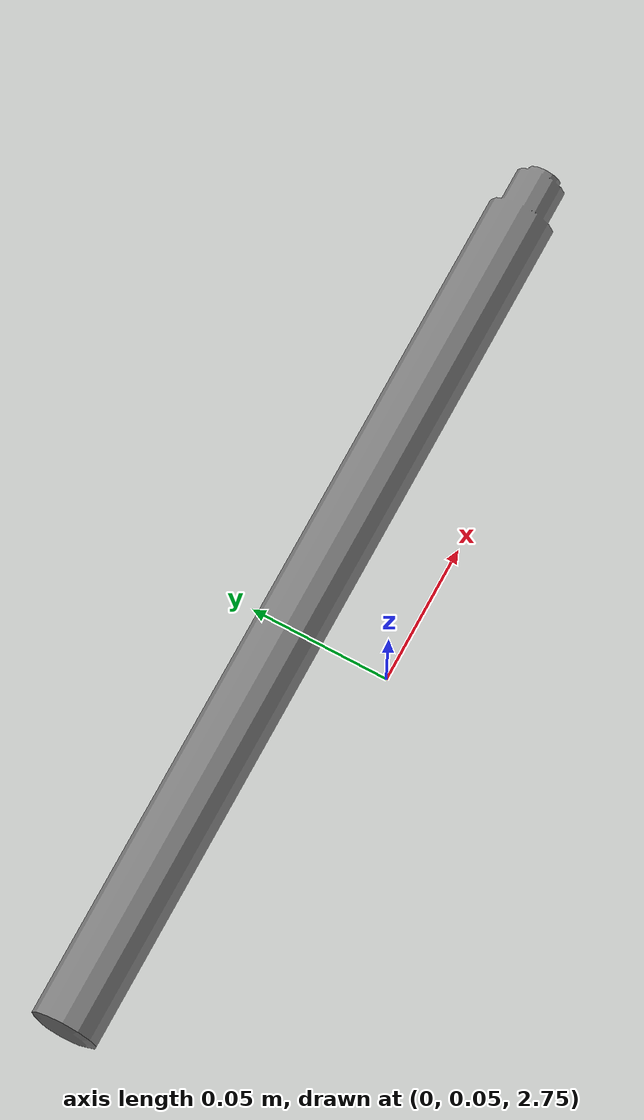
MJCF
<mujoco model="stick">
  <compiler angle="radian" meshdir="." />
  <default>
    <geom type="mesh"/>
    <default class="material-stick">
      <geom rgba="0.5 0.5 0.5 1"/>
    </default>
  </default>
  <asset>
    <mesh name="stick" file="../assets/stick.stl" scale="1 3 3"/>
  </asset>
  <worldbody>
    <body name="stick_body" pos="0 0 0">
      <geom type="mesh" mesh="stick" pos="0 0 0" quat="1 0 0 0" class="material-stick"/>
      <inertial pos="0 0 0" mass="0.05" diaginertia="0.0001 0.0001 0.0001"/>
    </body>
  </worldbody>
</mujoco>
